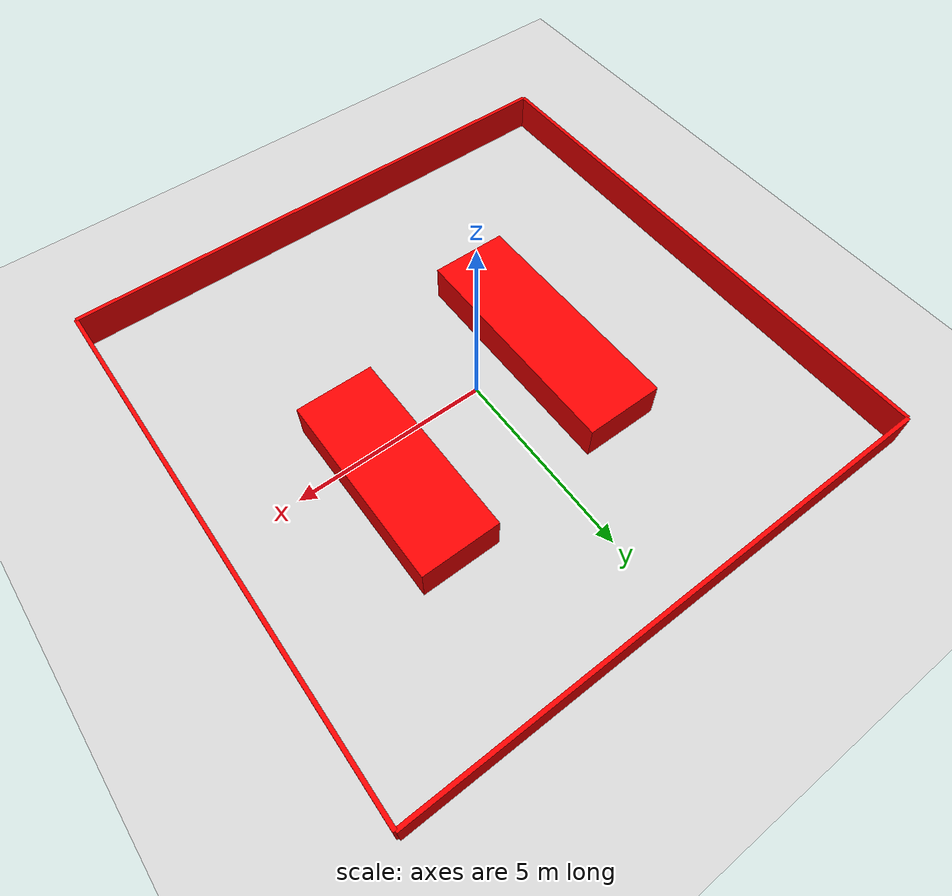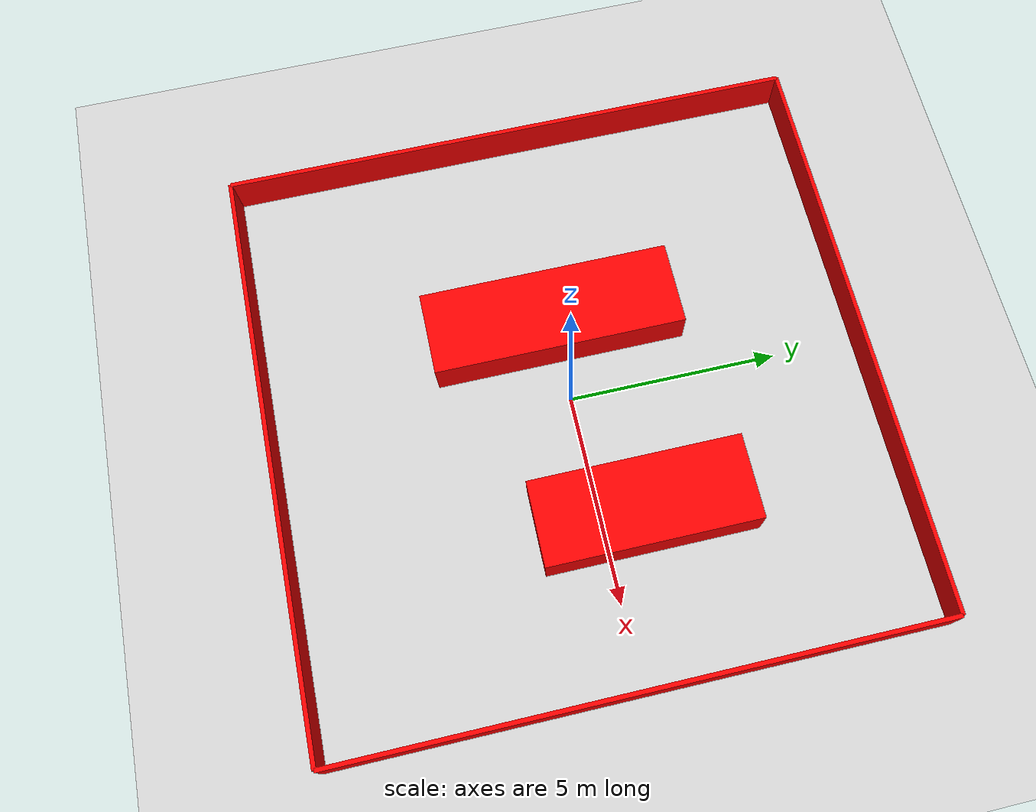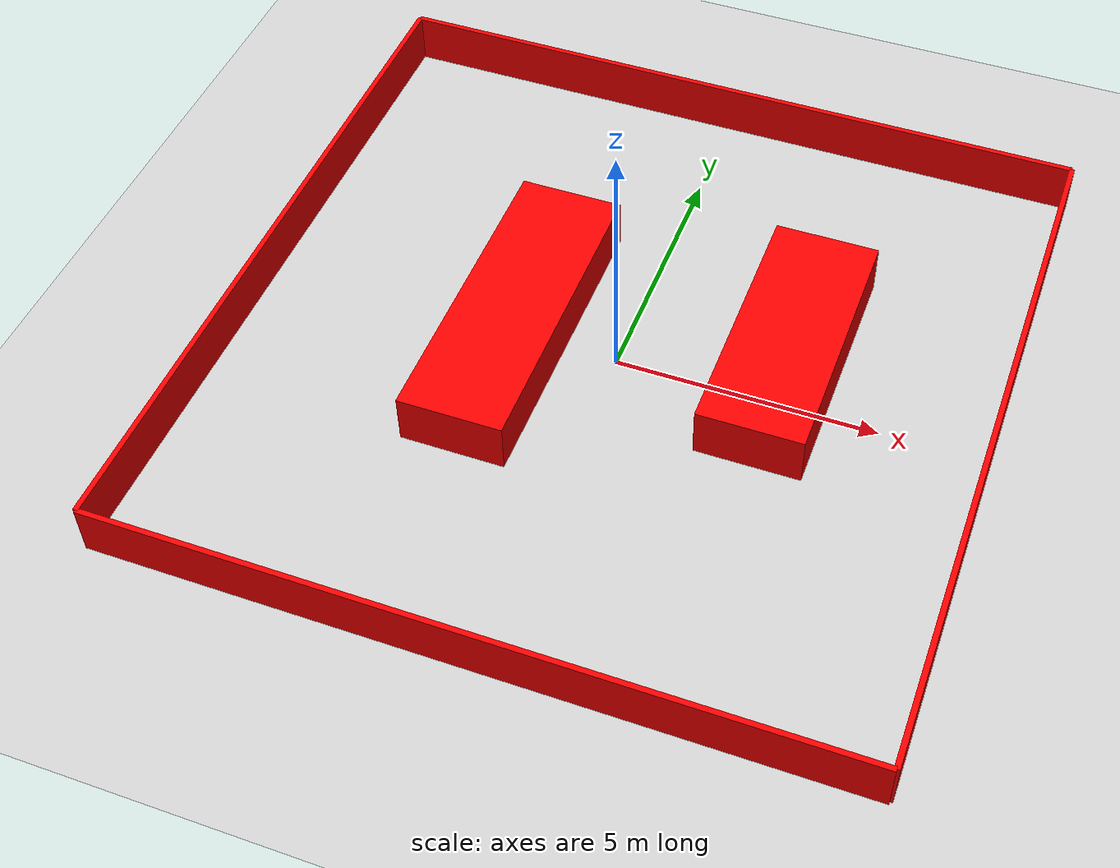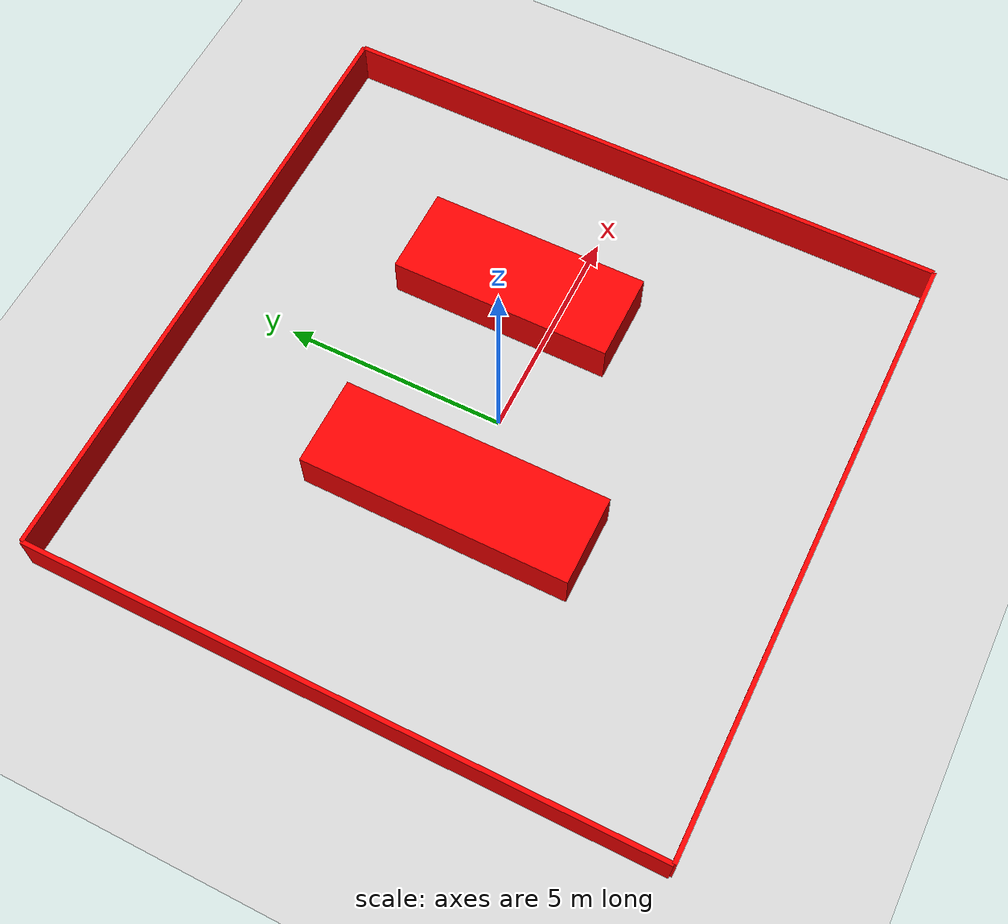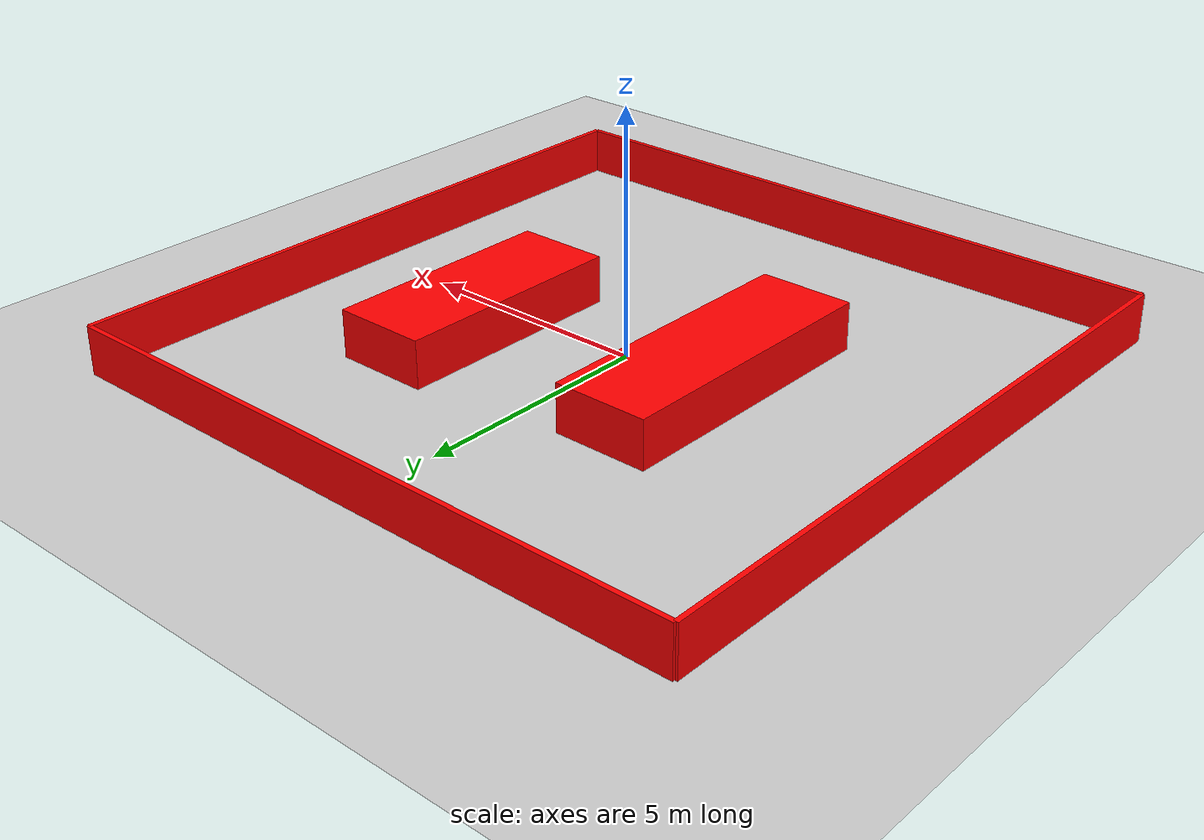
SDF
<sdf version="1.6">
 <world name="default">
  <include><uri>model://ground_plane</uri></include>
  <include><uri>model://sun</uri></include>
  <scene><shadows>false</shadows></scene>
  <physics type="ode">
   <real_time_update_rate>1000.0</real_time_update_rate>
   <max_step_size>0.001</max_step_size>
   <real_time_factor>1</real_time_factor>
   <ode>
    <solver>
     <type>quick</type>
     <iters>150</iters>
     <precon_iters>0</precon_iters>
     <sor>1.4</sor>
     <use_dynamic_moi_rescaling>1</use_dynamic_moi_rescaling>
    </solver>
    <constraints>
     <cfm>0.00001</cfm>
     <erp>0.2</erp>
     <contact_max_correcting_vel>2000.0</contact_max_correcting_vel>
     <contact_surface_layer>0.01</contact_surface_layer>
    </constraints>
   </ode>
  </physics>
  <model name="wall_bottom">
   <static>true</static>
   <pose>0 -7 0.5 0 0 0</pose>
   <link name="link">
    <collision name="collision"><geometry><box><size>14 0.1 1</size></box></geometry></collision>
    <visual name="visual">
     <geometry><box><size>14 0.1 1</size></box></geometry>
     <material><ambient>1 0 0 1</ambient></material>
    </visual>
   </link>
  </model>
  <model name="wall_top">
   <static>true</static>
   <pose>0 7 0.5 0 0 0</pose>
   <link name="link">
    <collision name="collision"><geometry><box><size>14 0.1 1</size></box></geometry></collision>
    <visual name="visual">
     <geometry><box><size>14 0.1 1</size></box></geometry>
     <material><ambient>1 0 0 1</ambient></material>
    </visual>
   </link>
  </model>
  <model name="wall_left">
   <static>true</static>
   <pose>-7 0 0.5 0 0 1.5708</pose>
   <link name="link">
    <collision name="collision"><geometry><box><size>14 0.1 1</size></box></geometry></collision>
    <visual name="visual">
     <geometry><box><size>14 0.1 1</size></box></geometry>
     <material><ambient>1 0 0 1</ambient></material>
    </visual>
   </link>
  </model>
  <model name="wall_right">
   <static>true</static>
   <pose>7 0 0.5 0 0 1.5708</pose>
   <link name="link">
    <collision name="collision"><geometry><box><size>14 0.1 1</size></box></geometry></collision>
    <visual name="visual">
     <geometry><box><size>14 0.1 1</size></box></geometry>
     <material><ambient>1 0 0 1</ambient></material>
    </visual>
   </link>
  </model>
  <model name="inner_block_left">
   <static>true</static>
   <pose>-2 0 0.5 0 0 0</pose>
   <link name="link">
    <collision name="collision"><geometry><box><size>2 6 1</size></box></geometry></collision>
    <visual name="visual">
     <geometry><box><size>2 6 1</size></box></geometry>
     <material><ambient>1 0 0 1</ambient></material>
    </visual>
   </link>
  </model>
  <model name="inner_block_right">
   <static>true</static>
   <pose>3 1 0.5 0 0 0</pose>
   <link name="link">
    <collision name="collision"><geometry><box><size>2 5 1</size></box></geometry></collision>
    <visual name="visual">
     <geometry><box><size>2 5 1</size></box></geometry>
     <material><ambient>1 0 0 1</ambient></material>
    </visual>
   </link>
  </model>
 </world>
</sdf>
